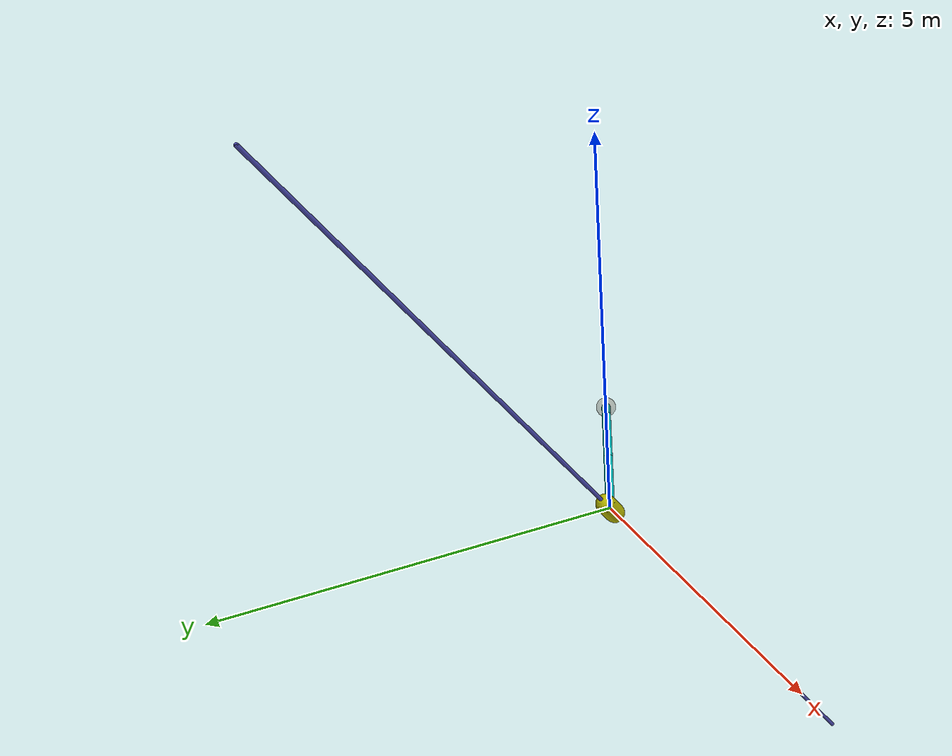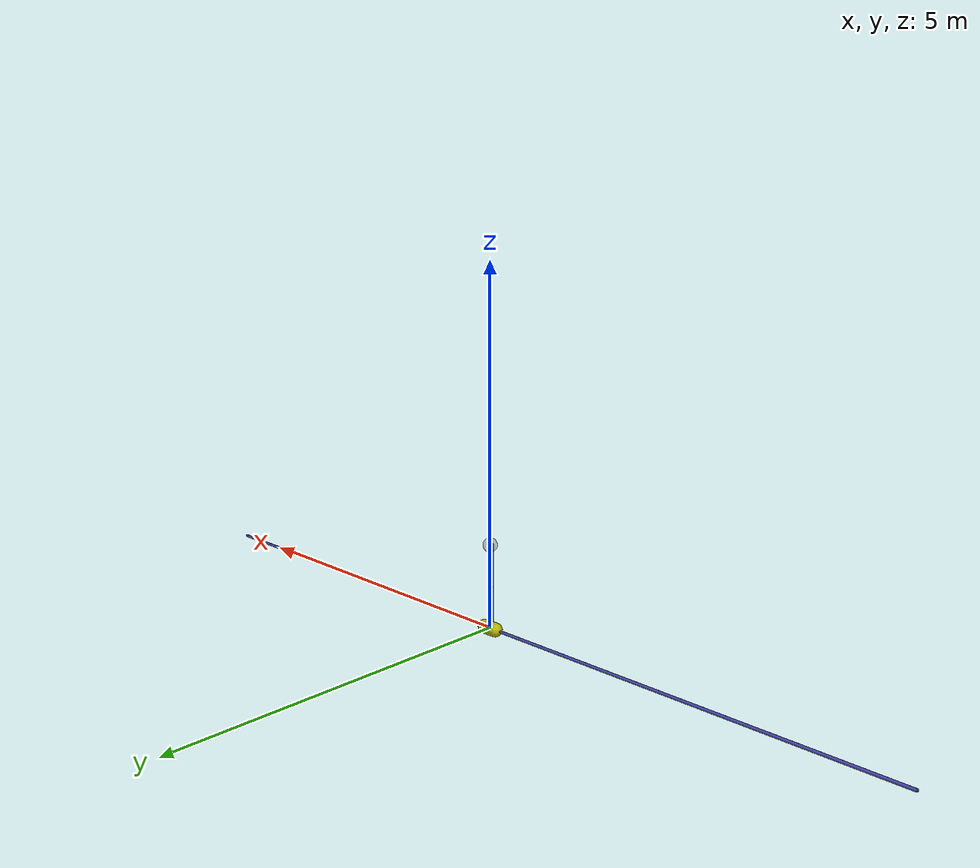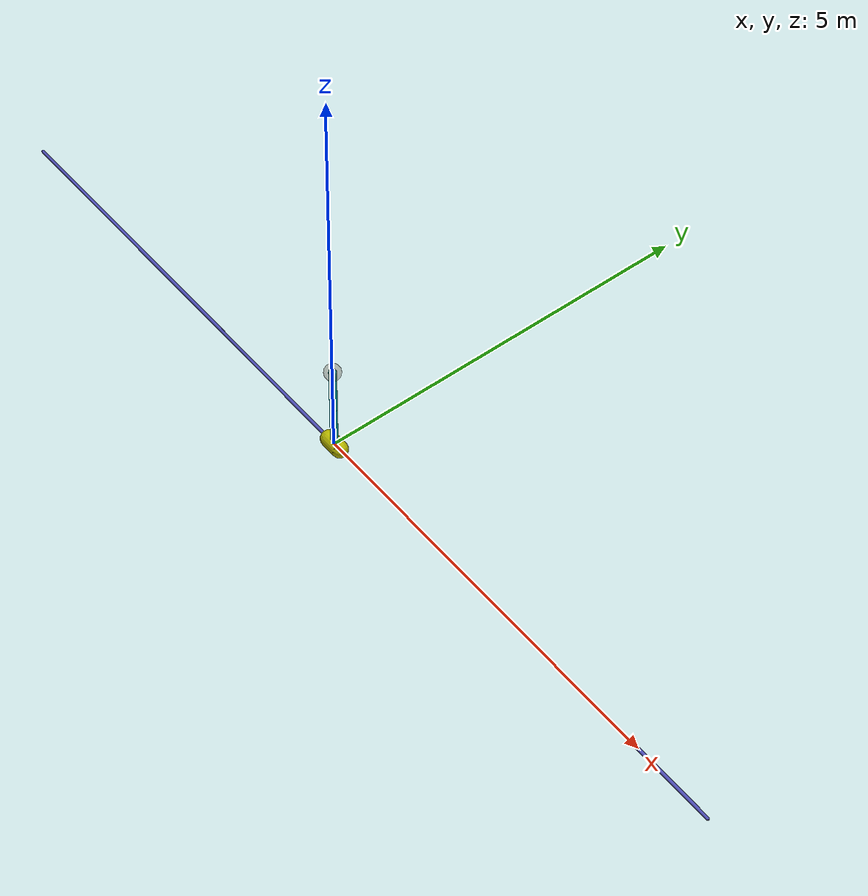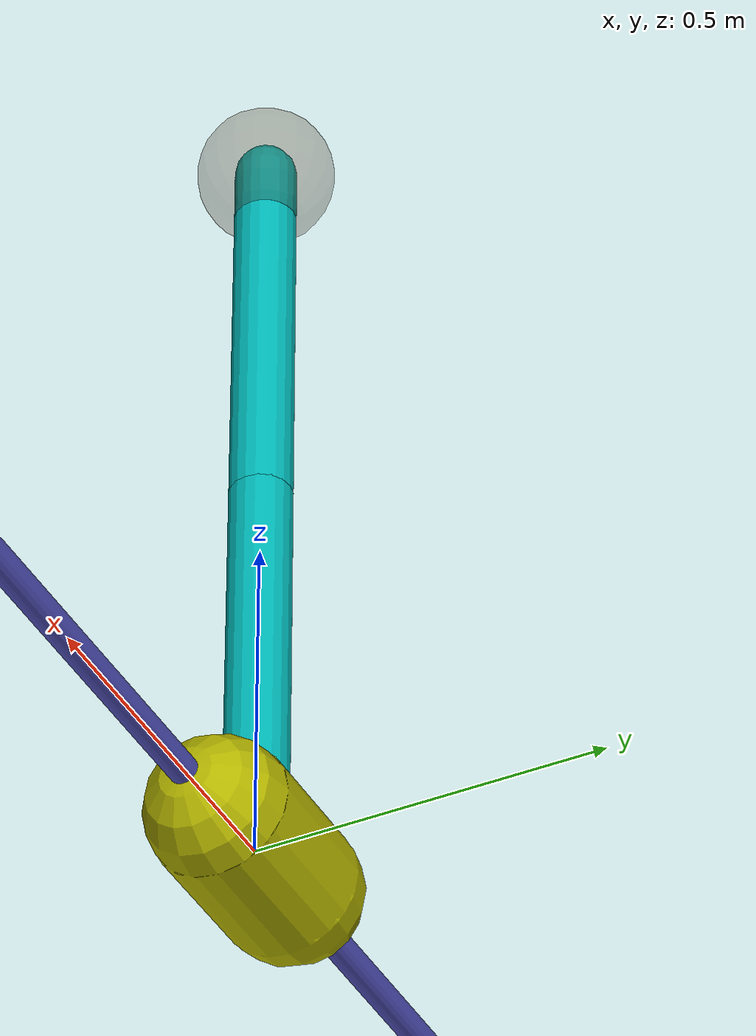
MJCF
<mujoco model="cartpole">
  <compiler coordinate="local" inertiafromgeom="true"/>
  <custom>
    <numeric data="2" name="frame_skip"/>
  </custom>
  <default>
    <joint damping="0.05"/>
    <geom contype="0" friction="1 0.1 0.1" rgba="0.7 0.7 0 1"/>
  </default>
  <option gravity="0 0 -9.81" integrator="RK4" iterations="50" solver="Newton" timestep="0.004"/>
  <size nstack="3000"/>
  <worldbody>
    <geom name="floor" pos="0 0 -3.0" rgba="0.0 0.0 0.0 0" size="40 40 40" type="plane"/>
    <geom name="rail" pos="0 0 0" quat="0.707 0 0.707 0" rgba="0.3 0.3 0.7 1" size="0.02 6" type="capsule"/>
    <geom name="rail2" pos="0 0 0" quat="0.707 0 -0.707 0" rgba="0.3 0.3 0.7 1" size="0.02 6" type="capsule"/>
    <body name="cart" pos="0 0 0">
      <site name="center" pos="0 0 0" size=".1" type="sphere" rgba="0.3 0.2 0.1 0.3"/>
      <joint axis="1 0 0" limited="true" margin="0.01" name="slider" pos="0 0 0" range="-6 6" type="slide"/>
      <joint axis="0 1 0" limited="true" margin="0.01" name="slidery" pos="0 0 0" range="-6 6" type="slide"/>
      <geom name="cart" pos="0 0 0" quat="0.707 0 0.707 0" size="0.1 0.1" type="capsule"/>
      <body name="pole" pos="0 0 0">
        <joint axis="0 1 0" name="hinge" pos="0 0 0" type="hinge"/>
	<joint axis="1 0 0" name="hingex" pos="0 0 0" type="hinge"/>
        <geom fromto="0 0 0 0 0 0.6" name="cpole" rgba="0 0.7 0.7 1" size="0.045 0.3" type="capsule"/>
        <body name="pole2" pos="0 0 0.6">
          <joint axis="0 1 0" name="hinge2" pos="0 0 0" type="hinge"/>
	  <joint axis="1 0 0" name="hinge2x" pos="0 0 0" type="hinge"/>
          <geom fromto="0 0 0 0 0 0.6" name="cpole2" rgba="0 0.7 0.7 1" size="0.045 0.3" type="capsule"/>
	  <site name="tip" pos="0 0 0.6" size=".1" type="sphere" rgba="0.3 0.2 0.1 0.3"/>
          <!--site name="tip" pos="0 0 .6" size="0.01 0.01"/-->
        </body>
      </body>
    </body>
  </worldbody>
  <actuator>
    <motor ctrllimited="true" ctrlrange="-1 1" gear="500" joint="slider" name="slide"/>
	<motor ctrllimited="true" ctrlrange="-1 1" gear="500" joint="slidery" name="slidey"/>
  </actuator>
  <sensor>
	<jointpos name="slider_sens"    	joint="slider" />
	<jointpos name="slider_sens1"    	joint="slidery" />
	<velocimeter name="speed"		site="center" />

	<jointpos name="rot"  			joint="hinge" />
	<jointpos name="rot2"  			joint="hinge2" />

	<jointpos name="rotx"  			joint="hingex" />
	<jointpos name="rot2x"  		joint="hinge2x" />

	<jointvel name="drot"  			joint="hinge" />
	<jointvel name="drot2"  		joint="hinge2" />

	<jointvel name="drotx"  		joint="hingex" />
	<jointvel name="drot2x"  		joint="hinge2x" />
 </sensor>
</mujoco>
